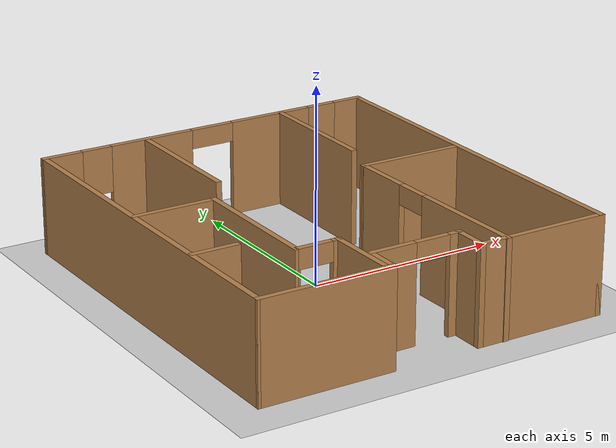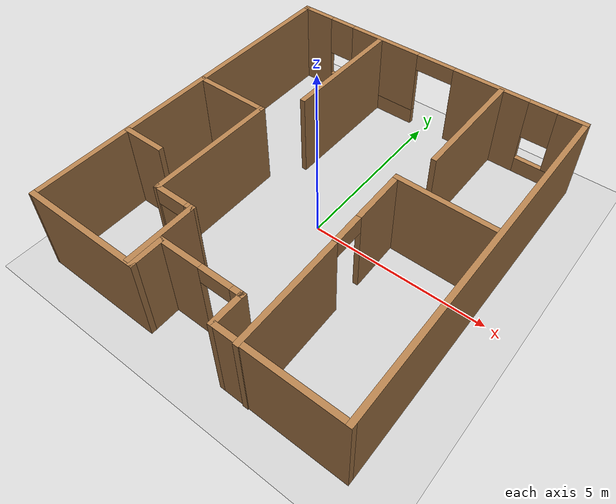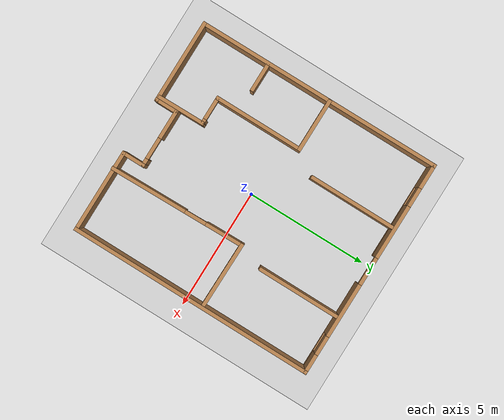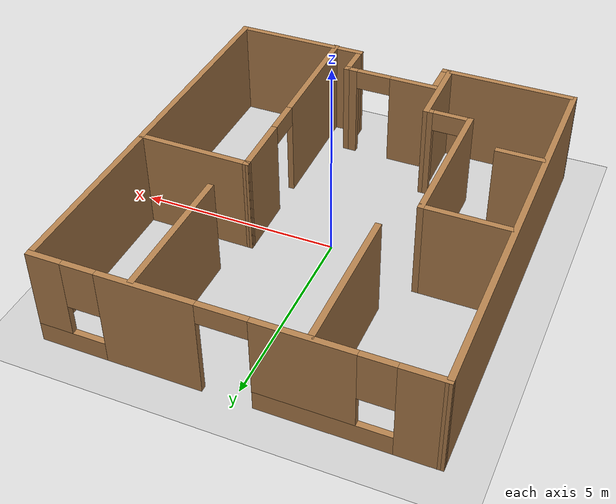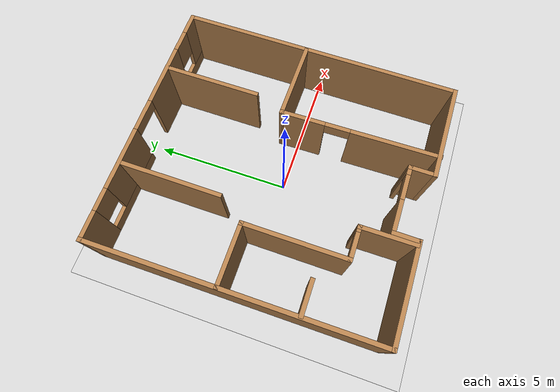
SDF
<sdf version="1.7">
 <world name="default">
  <light name="sun" type="directional">
   <pose>0 0 10 0 -0 0</pose>
   <diffuse>0.8 0.8 0.8 1</diffuse>
   <specular>0.2 0.2 0.2 1</specular>
   <attenuation>
    <range>1000</range>
    <constant>0.9</constant>
    <linear>0.01</linear>
    <quadratic>0.001</quadratic>
   </attenuation>
   <direction>-0.5 0.1 -0.9</direction>
   <spot><inner_angle>0</inner_angle><outer_angle>0</outer_angle><falloff>0</falloff></spot>
  </light>
  <model name="ground_plane">
   <static>1</static>
   <link name="link">
    <collision name="collision">
     <geometry><plane><normal>0 0 1</normal><size>100 100</size></plane></geometry>
     <surface><friction><ode><mu>100</mu><mu2>50</mu2></ode></friction></surface>
    </collision>
    <visual name="visual">
     <cast_shadows>0</cast_shadows>
     <geometry><plane><normal>0 0 1</normal><size>100 100</size></plane></geometry>
     <material>
      <script><uri>file://media/materials/scripts/gazebo.material</uri><name>Gazebo/Grey</name></script>
     </material>
    </visual>
   </link>
  </model>
  <gravity>0 0 -9.8</gravity>
  <magnetic_field>6e-06 2.3e-05 -4.2e-05</magnetic_field>
  <atmosphere type="adiabatic"/>
  <physics type="ode">
   <max_step_size>0.001</max_step_size>
   <real_time_factor>1</real_time_factor>
   <real_time_update_rate>1000</real_time_update_rate>
  </physics>
  <scene><ambient>0.4 0.4 0.4 1</ambient><background>0.7 0.7 0.7 1</background><shadows>1</shadows></scene>
  <audio><device>default</device></audio>
  <spherical_coordinates>
   <surface_model>EARTH_WGS84</surface_model>
   <latitude_deg>0</latitude_deg>
   <longitude_deg>0</longitude_deg>
   <elevation>0</elevation>
   <heading_deg>0</heading_deg>
  </spherical_coordinates>
  <model name="Clinic">
   <pose>0.029063 0.172538 0 0 -0 0</pose>
   <link name="Wall_0">
    <pose>0.000185 5.06188 0 0 -0 0</pose>
    <visual name="Wall_0_Visual_0">
     <pose>-4.08961 0 1.25 0 -0 0</pose>
     <geometry><box><size>1.07077 0.15 2.5</size></box></geometry>
     <material>
      <script><uri>file://media/materials/scripts/gazebo.material</uri><name>Gazebo/Wood</name></script>
      <ambient>1 1 1 1</ambient>
     </material>
     <meta><layer>0</layer></meta>
    </visual>
    <collision name="Wall_0_Collision_0">
     <geometry><box><size>1.07077 0.15 2.5</size></box></geometry>
     <pose>-4.08961 0 1.25 0 -0 0</pose>
    </collision>
    <visual name="Wall_0_Visual_1">
     <pose>1.84023 0 1.25 0 -0 0</pose>
     <geometry><box><size>2.29061 0.15 2.5</size></box></geometry>
     <material>
      <script><uri>file://media/materials/scripts/gazebo.material</uri><name>Gazebo/Wood</name></script>
      <ambient>1 1 1 1</ambient>
     </material>
     <meta><layer>0</layer></meta>
    </visual>
    <collision name="Wall_0_Collision_1">
     <geometry><box><size>2.29061 0.15 2.5</size></box></geometry>
     <pose>1.84023 0 1.25 0 -0 0</pose>
    </collision>
    <visual name="Wall_0_Visual_2">
     <pose>-2.01653 0 0.25 0 -0 0</pose>
     <geometry><box><size>3.0754 0.15 0.5</size></box></geometry>
     <material>
      <script><uri>file://media/materials/scripts/gazebo.material</uri><name>Gazebo/Wood</name></script>
      <ambient>1 1 1 1</ambient>
     </material>
     <meta><layer>0</layer></meta>
    </visual>
    <collision name="Wall_0_Collision_2">
     <geometry><box><size>3.0754 0.15 0.5</size></box></geometry>
     <pose>-2.01653 0 0.25 0 -0 0</pose>
    </collision>
    <visual name="Wall_0_Visual_3">
     <pose>3.80527 0 0.25 0 -0 0</pose>
     <geometry><box><size>1.63947 0.15 0.5</size></box></geometry>
     <material>
      <script><uri>file://media/materials/scripts/gazebo.material</uri><name>Gazebo/Wood</name></script>
      <ambient>1 1 1 1</ambient>
     </material>
     <meta><layer>0</layer></meta>
    </visual>
    <collision name="Wall_0_Collision_3">
     <geometry><box><size>1.63947 0.15 0.5</size></box></geometry>
     <pose>3.80527 0 0.25 0 -0 0</pose>
    </collision>
    <visual name="Wall_0_Visual_4">
     <pose>-1.61653 0 1.5 0 -0 0</pose>
     <geometry><box><size>2.2754 0.15 2</size></box></geometry>
     <material>
      <script><uri>file://media/materials/scripts/gazebo.material</uri><name>Gazebo/Wood</name></script>
      <ambient>1 1 1 1</ambient>
     </material>
     <meta><layer>0</layer></meta>
    </visual>
    <collision name="Wall_0_Collision_4">
     <geometry><box><size>2.2754 0.15 2</size></box></geometry>
     <pose>-1.61653 0 1.5 0 -0 0</pose>
    </collision>
    <visual name="Wall_0_Visual_5">
     <pose>-1.61653 0 1.5 0 -0 0</pose>
     <geometry><box><size>2.2754 0.15 2</size></box></geometry>
     <material>
      <script><uri>file://media/materials/scripts/gazebo.material</uri><name>Gazebo/Wood</name></script>
      <ambient>1 1 1 1</ambient>
     </material>
     <meta><layer>0</layer></meta>
    </visual>
    <collision name="Wall_0_Collision_5">
     <geometry><box><size>2.2754 0.15 2</size></box></geometry>
     <pose>-1.61653 0 1.5 0 -0 0</pose>
    </collision>
    <visual name="Wall_0_Visual_6">
     <pose>4.20527 0 1.5 0 -0 0</pose>
     <geometry><box><size>0.839466 0.15 2</size></box></geometry>
     <material>
      <script><uri>file://media/materials/scripts/gazebo.material</uri><name>Gazebo/Wood</name></script>
      <ambient>1 1 1 1</ambient>
     </material>
     <meta><layer>0</layer></meta>
    </visual>
    <collision name="Wall_0_Collision_6">
     <geometry><box><size>0.839466 0.15 2</size></box></geometry>
     <pose>4.20527 0 1.5 0 -0 0</pose>
    </collision>
    <visual name="Wall_0_Visual_7">
     <pose>-3.15423 0 1.9 0 -0 0</pose>
     <geometry><box><size>0.8 0.15 1.2</size></box></geometry>
     <material>
      <script><uri>file://media/materials/scripts/gazebo.material</uri><name>Gazebo/Wood</name></script>
      <ambient>1 1 1 1</ambient>
     </material>
     <meta><layer>0</layer></meta>
    </visual>
    <collision name="Wall_0_Collision_7">
     <geometry><box><size>0.8 0.15 1.2</size></box></geometry>
     <pose>-3.15423 0 1.9 0 -0 0</pose>
    </collision>
    <visual name="Wall_0_Visual_8">
     <pose>3.38553 0 1.9 0 -0 0</pose>
     <geometry><box><size>0.8 0.15 1.2</size></box></geometry>
     <material>
      <script><uri>file://media/materials/scripts/gazebo.material</uri><name>Gazebo/Wood</name></script>
      <ambient>1 1 1 1</ambient>
     </material>
     <meta><layer>0</layer></meta>
    </visual>
    <collision name="Wall_0_Collision_8">
     <geometry><box><size>0.8 0.15 1.2</size></box></geometry>
     <pose>3.38553 0 1.9 0 -0 0</pose>
    </collision>
    <visual name="Wall_0_Visual_9">
     <pose>0.108049 0 2.25 0 -0 0</pose>
     <geometry><box><size>1.17376 0.15 0.5</size></box></geometry>
     <material>
      <script><uri>file://media/materials/scripts/gazebo.material</uri><name>Gazebo/Wood</name></script>
      <ambient>1 1 1 1</ambient>
     </material>
     <meta><layer>0</layer></meta>
    </visual>
    <collision name="Wall_0_Collision_9">
     <geometry><box><size>1.17376 0.15 0.5</size></box></geometry>
     <pose>0.108049 0 2.25 0 -0 0</pose>
    </collision>
    <visual name="Wall_0_Visual_10">
     <pose>0.108049 0 2.25 0 -0 0</pose>
     <geometry><box><size>1.17376 0.15 0.5</size></box></geometry>
     <material>
      <script><uri>file://media/materials/scripts/gazebo.material</uri><name>Gazebo/Wood</name></script>
      <ambient>1 1 1 1</ambient>
     </material>
     <meta><layer>0</layer></meta>
    </visual>
    <collision name="Wall_0_Collision_10">
     <geometry><box><size>1.17376 0.15 0.5</size></box></geometry>
     <pose>0.108049 0 2.25 0 -0 0</pose>
    </collision>
   </link>
   <link name="Wall_1">
    <collision name="Wall_1_Collision">
     <geometry><box><size>10.25 0.15 2.5</size></box></geometry>
     <pose>0 0 1.25 0 -0 0</pose>
    </collision>
    <visual name="Wall_1_Visual">
     <pose>0 0 1.25 0 -0 0</pose>
     <geometry><box><size>10.25 0.15 2.5</size></box></geometry>
     <material>
      <script><uri>file://media/materials/scripts/gazebo.material</uri><name>Gazebo/Wood</name></script>
      <ambient>1 1 1 1</ambient>
     </material>
     <meta><layer>0</layer></meta>
    </visual>
    <pose>4.55018 0.011879 0 0 -0 -1.5708</pose>
   </link>
   <link name="Wall_11">
    <collision name="Wall_11_Collision">
     <geometry><box><size>3.5 0.15 2.5</size></box></geometry>
     <pose>0 0 1.25 0 -0 0</pose>
    </collision>
    <visual name="Wall_11_Visual">
     <pose>0 0 1.25 0 -0 0</pose>
     <geometry><box><size>3.5 0.15 2.5</size></box></geometry>
     <material>
      <script><uri>file://media/materials/scripts/gazebo.material</uri><name>Gazebo/Wood</name></script>
      <ambient>1 1 1 1</ambient>
     </material>
     <meta><layer>0</layer></meta>
    </visual>
    <pose>2.16802 3.30357 0 0 -0 1.5708</pose>
   </link>
   <link name="Wall_13">
    <collision name="Wall_13_Collision">
     <geometry><box><size>2.87798 0.15 2.5</size></box></geometry>
     <pose>0 0 1.25 0 -0 0</pose>
    </collision>
    <visual name="Wall_13_Visual">
     <pose>0 0 1.25 0 -0 0</pose>
     <geometry><box><size>2.87798 0.15 2.5</size></box></geometry>
     <material>
      <script><uri>file://media/materials/scripts/gazebo.material</uri><name>Gazebo/Wood</name></script>
      <ambient>1 1 1 1</ambient>
     </material>
     <meta><layer>0</layer></meta>
    </visual>
    <pose>3.15342 0.518272 0 0 -0 -0.009488</pose>
   </link>
   <link name="Wall_15">
    <pose>1.84126 -2.26483 0 0 -0 -1.55228</pose>
    <visual name="Wall_15_Visual_0">
     <pose>-2.04923 0 1.25 0 -0 0</pose>
     <geometry><box><size>1.6446 0.15 2.5</size></box></geometry>
     <material>
      <script><uri>file://media/materials/scripts/gazebo.material</uri><name>Gazebo/Wood</name></script>
      <ambient>1 1 1 1</ambient>
     </material>
     <meta><layer>0</layer></meta>
    </visual>
    <collision name="Wall_15_Collision_0">
     <geometry><box><size>1.6446 0.15 2.5</size></box></geometry>
     <pose>-2.04923 0 1.25 0 -0 0</pose>
    </collision>
    <visual name="Wall_15_Visual_1">
     <pose>1.2723 0 1.25 0 -0 0</pose>
     <geometry><box><size>3.19845 0.15 2.5</size></box></geometry>
     <material>
      <script><uri>file://media/materials/scripts/gazebo.material</uri><name>Gazebo/Wood</name></script>
      <ambient>1 1 1 1</ambient>
     </material>
     <meta><layer>0</layer></meta>
    </visual>
    <collision name="Wall_15_Collision_1">
     <geometry><box><size>3.19845 0.15 2.5</size></box></geometry>
     <pose>1.2723 0 1.25 0 -0 0</pose>
    </collision>
    <visual name="Wall_15_Visual_2">
     <pose>-0.776928 0 2.25 0 -0 0</pose>
     <geometry><box><size>0.9 0.15 0.5</size></box></geometry>
     <material>
      <script><uri>file://media/materials/scripts/gazebo.material</uri><name>Gazebo/Wood</name></script>
      <ambient>1 1 1 1</ambient>
     </material>
     <meta><layer>0</layer></meta>
    </visual>
    <collision name="Wall_15_Collision_2">
     <geometry><box><size>0.9 0.15 0.5</size></box></geometry>
     <pose>-0.776928 0 2.25 0 -0 0</pose>
    </collision>
   </link>
   <link name="Wall_17">
    <collision name="Wall_17_Collision">
     <geometry><box><size>2.25 0.15 2.5</size></box></geometry>
     <pose>0 0 1.25 0 -0 0</pose>
    </collision>
    <visual name="Wall_17_Visual">
     <pose>0 0 1.25 0 -0 0</pose>
     <geometry><box><size>2.25 0.15 2.5</size></box></geometry>
     <material>
      <script><uri>file://media/materials/scripts/gazebo.material</uri><name>Gazebo/Wood</name></script>
      <ambient>1 1 1 1</ambient>
     </material>
     <meta><layer>0</layer></meta>
    </visual>
    <pose>-3.45833 0.465985 0 0 -0 0</pose>
   </link>
   <link name="Wall_18">
    <collision name="Wall_18_Collision">
     <geometry><box><size>3.75 0.15 2.5</size></box></geometry>
     <pose>0 0 1.25 0 -0 0</pose>
    </collision>
    <visual name="Wall_18_Visual">
     <pose>0 0 1.25 0 -0 0</pose>
     <geometry><box><size>3.75 0.15 2.5</size></box></geometry>
     <material>
      <script><uri>file://media/materials/scripts/gazebo.material</uri><name>Gazebo/Wood</name></script>
      <ambient>1 1 1 1</ambient>
     </material>
     <meta><layer>0</layer></meta>
    </visual>
    <pose>-2.40833 -1.33401 0 0 -0 -1.5708</pose>
   </link>
   <link name="Wall_19">
    <pose>-1.85833 -3.13402 0 0 -0 0</pose>
    <visual name="Wall_19_Visual_0">
     <pose>-0.577005 0 1.25 0 -0 0</pose>
     <geometry><box><size>0.09599 0.15 2.5</size></box></geometry>
     <material>
      <script><uri>file://media/materials/scripts/gazebo.material</uri><name>Gazebo/Wood</name></script>
      <ambient>1 1 1 1</ambient>
     </material>
     <meta><layer>0</layer></meta>
    </visual>
    <collision name="Wall_19_Collision_0">
     <geometry><box><size>0.09599 0.15 2.5</size></box></geometry>
     <pose>-0.577005 0 1.25 0 -0 0</pose>
    </collision>
    <visual name="Wall_19_Visual_1">
     <pose>0.497995 0 1.25 0 -0 0</pose>
     <geometry><box><size>0.25401 0.15 2.5</size></box></geometry>
     <material>
      <script><uri>file://media/materials/scripts/gazebo.material</uri><name>Gazebo/Wood</name></script>
      <ambient>1 1 1 1</ambient>
     </material>
     <meta><layer>0</layer></meta>
    </visual>
    <collision name="Wall_19_Collision_1">
     <geometry><box><size>0.25401 0.15 2.5</size></box></geometry>
     <pose>0.497995 0 1.25 0 -0 0</pose>
    </collision>
    <visual name="Wall_19_Visual_2">
     <pose>-0.07901 0 2.25 0 -0 0</pose>
     <geometry><box><size>0.9 0.15 0.5</size></box></geometry>
     <material>
      <script><uri>file://media/materials/scripts/gazebo.material</uri><name>Gazebo/Wood</name></script>
      <ambient>1 1 1 1</ambient>
     </material>
     <meta><layer>0</layer></meta>
    </visual>
    <collision name="Wall_19_Collision_2">
     <geometry><box><size>0.9 0.15 0.5</size></box></geometry>
     <pose>-0.07901 0 2.25 0 -0 0</pose>
    </collision>
   </link>
   <link name="Wall_2">
    <collision name="Wall_2_Collision">
     <geometry><box><size>3.5 0.15 2.5</size></box></geometry>
     <pose>0 0 1.25 0 -0 0</pose>
    </collision>
    <visual name="Wall_2_Visual">
     <pose>0 0 1.25 0 -0 0</pose>
     <geometry><box><size>3.5 0.15 2.5</size></box></geometry>
     <material>
      <script><uri>file://media/materials/scripts/gazebo.material</uri><name>Gazebo/Wood</name></script>
      <ambient>1 1 1 1</ambient>
     </material>
     <meta><layer>0</layer></meta>
    </visual>
    <pose>2.87519 -5.03812 0 0 -0 3.14159</pose>
   </link>
   <link name="Wall_20">
    <collision name="Wall_20_Collision">
     <geometry><box><size>2.00766 0.15 2.5</size></box></geometry>
     <pose>0 0 1.25 0 -0 0</pose>
    </collision>
    <visual name="Wall_20_Visual">
     <pose>0 0 1.25 0 -0 0</pose>
     <geometry><box><size>2.00766 0.15 2.5</size></box></geometry>
     <material>
      <script><uri>file://media/materials/scripts/gazebo.material</uri><name>Gazebo/Wood</name></script>
      <ambient>1 1 1 1</ambient>
     </material>
     <meta><layer>0</layer></meta>
    </visual>
    <pose>-1.29925 -4.06247 0 0 -0 -1.56101</pose>
   </link>
   <link name="Wall_22">
    <collision name="Wall_22_Collision">
     <geometry><box><size>1.25 0.15 2.5</size></box></geometry>
     <pose>0 0 1.25 0 -0 0</pose>
    </collision>
    <visual name="Wall_22_Visual">
     <pose>0 0 1.25 0 -0 0</pose>
     <geometry><box><size>1.25 0.15 2.5</size></box></geometry>
     <material>
      <script><uri>file://media/materials/scripts/gazebo.material</uri><name>Gazebo/Wood</name></script>
      <ambient>1 1 1 1</ambient>
     </material>
     <meta><layer>0</layer></meta>
    </visual>
    <pose>-3.92335 -2.21 0 0 -0 0</pose>
   </link>
   <link name="Wall_3">
    <collision name="Wall_3_Collision">
     <geometry><box><size>1 0.15 2.5</size></box></geometry>
     <pose>0 0 1.25 0 -0 0</pose>
    </collision>
    <visual name="Wall_3_Visual">
     <pose>0 0 1.25 0 -0 0</pose>
     <geometry><box><size>1 0.15 2.5</size></box></geometry>
     <material>
      <script><uri>file://media/materials/scripts/gazebo.material</uri><name>Gazebo/Wood</name></script>
      <ambient>1 1 1 1</ambient>
     </material>
     <meta><layer>0</layer></meta>
    </visual>
    <pose>1.20019 -4.61312 0 0 -0 1.5708</pose>
   </link>
   <link name="Wall_4">
    <pose>0.025185 -4.18812 0 0 -0 3.14159</pose>
    <visual name="Wall_4_Visual_0">
     <pose>-1.07023 0 1.25 0 -0 0</pose>
     <geometry><box><size>0.359545 0.15 2.5</size></box></geometry>
     <material>
      <script><uri>file://media/materials/scripts/gazebo.material</uri><name>Gazebo/Wood</name></script>
      <ambient>1 1 1 1</ambient>
     </material>
     <meta><layer>0</layer></meta>
    </visual>
    <collision name="Wall_4_Collision_0">
     <geometry><box><size>0.359545 0.15 2.5</size></box></geometry>
     <pose>-1.07023 0 1.25 0 -0 0</pose>
    </collision>
    <visual name="Wall_4_Visual_1">
     <pose>0.629773 0 1.25 0 -0 0</pose>
     <geometry><box><size>1.24046 0.15 2.5</size></box></geometry>
     <material>
      <script><uri>file://media/materials/scripts/gazebo.material</uri><name>Gazebo/Wood</name></script>
      <ambient>1 1 1 1</ambient>
     </material>
     <meta><layer>0</layer></meta>
    </visual>
    <collision name="Wall_4_Collision_1">
     <geometry><box><size>1.24046 0.15 2.5</size></box></geometry>
     <pose>0.629773 0 1.25 0 -0 0</pose>
    </collision>
    <visual name="Wall_4_Visual_2">
     <pose>-0.440455 0 2.25 0 -0 0</pose>
     <geometry><box><size>0.9 0.15 0.5</size></box></geometry>
     <material>
      <script><uri>file://media/materials/scripts/gazebo.material</uri><name>Gazebo/Wood</name></script>
      <ambient>1 1 1 1</ambient>
     </material>
     <meta><layer>0</layer></meta>
    </visual>
    <collision name="Wall_4_Collision_2">
     <geometry><box><size>0.9 0.15 0.5</size></box></geometry>
     <pose>-0.440455 0 2.25 0 -0 0</pose>
    </collision>
   </link>
   <link name="Wall_5">
    <collision name="Wall_5_Collision">
     <geometry><box><size>1 0.15 2.5</size></box></geometry>
     <pose>0 0 1.25 0 -0 0</pose>
    </collision>
    <visual name="Wall_5_Visual">
     <pose>0 0 1.25 0 -0 0</pose>
     <geometry><box><size>1 0.15 2.5</size></box></geometry>
     <material>
      <script><uri>file://media/materials/scripts/gazebo.material</uri><name>Gazebo/Wood</name></script>
      <ambient>1 1 1 1</ambient>
     </material>
     <meta><layer>0</layer></meta>
    </visual>
    <pose>-1.14982 -4.61312 0 0 -0 -1.5708</pose>
   </link>
   <link name="Wall_6">
    <collision name="Wall_6_Collision">
     <geometry><box><size>3.5 0.15 2.5</size></box></geometry>
     <pose>0 0 1.25 0 -0 0</pose>
    </collision>
    <visual name="Wall_6_Visual">
     <pose>0 0 1.25 0 -0 0</pose>
     <geometry><box><size>3.5 0.15 2.5</size></box></geometry>
     <material>
      <script><uri>file://media/materials/scripts/gazebo.material</uri><name>Gazebo/Wood</name></script>
      <ambient>1 1 1 1</ambient>
     </material>
     <meta><layer>0</layer></meta>
    </visual>
    <pose>-2.82482 -5.03812 0 0 -0 3.14159</pose>
   </link>
   <link name="Wall_7">
    <collision name="Wall_7_Collision">
     <geometry><box><size>10.2501 0.15 2.5</size></box></geometry>
     <pose>0 0 1.25 0 -0 0</pose>
    </collision>
    <visual name="Wall_7_Visual">
     <pose>0 0 1.25 0 -0 0</pose>
     <geometry><box><size>10.2501 0.15 2.5</size></box></geometry>
     <material>
      <script><uri>file://media/materials/scripts/gazebo.material</uri><name>Gazebo/Wood</name></script>
      <ambient>1 1 1 1</ambient>
     </material>
     <meta><layer>0</layer></meta>
    </visual>
    <pose>-4.52482 0.011879 0 0 -0 1.57575</pose>
   </link>
   <link name="Wall_9">
    <collision name="Wall_9_Collision">
     <geometry><box><size>3.75 0.15 2.5</size></box></geometry>
     <pose>0 0 1.25 0 -0 0</pose>
    </collision>
    <visual name="Wall_9_Visual">
     <pose>0 0 1.25 0 -0 0</pose>
     <geometry><box><size>3.75 0.15 2.5</size></box></geometry>
     <material>
      <script><uri>file://media/materials/scripts/gazebo.material</uri><name>Gazebo/Wood</name></script>
      <ambient>1 1 1 1</ambient>
     </material>
     <meta><layer>0</layer></meta>
    </visual>
    <pose>-1.76415 3.25794 0 0 -0 1.5708</pose>
   </link>
   <static>1</static>
  </model>
 </world>
</sdf>
